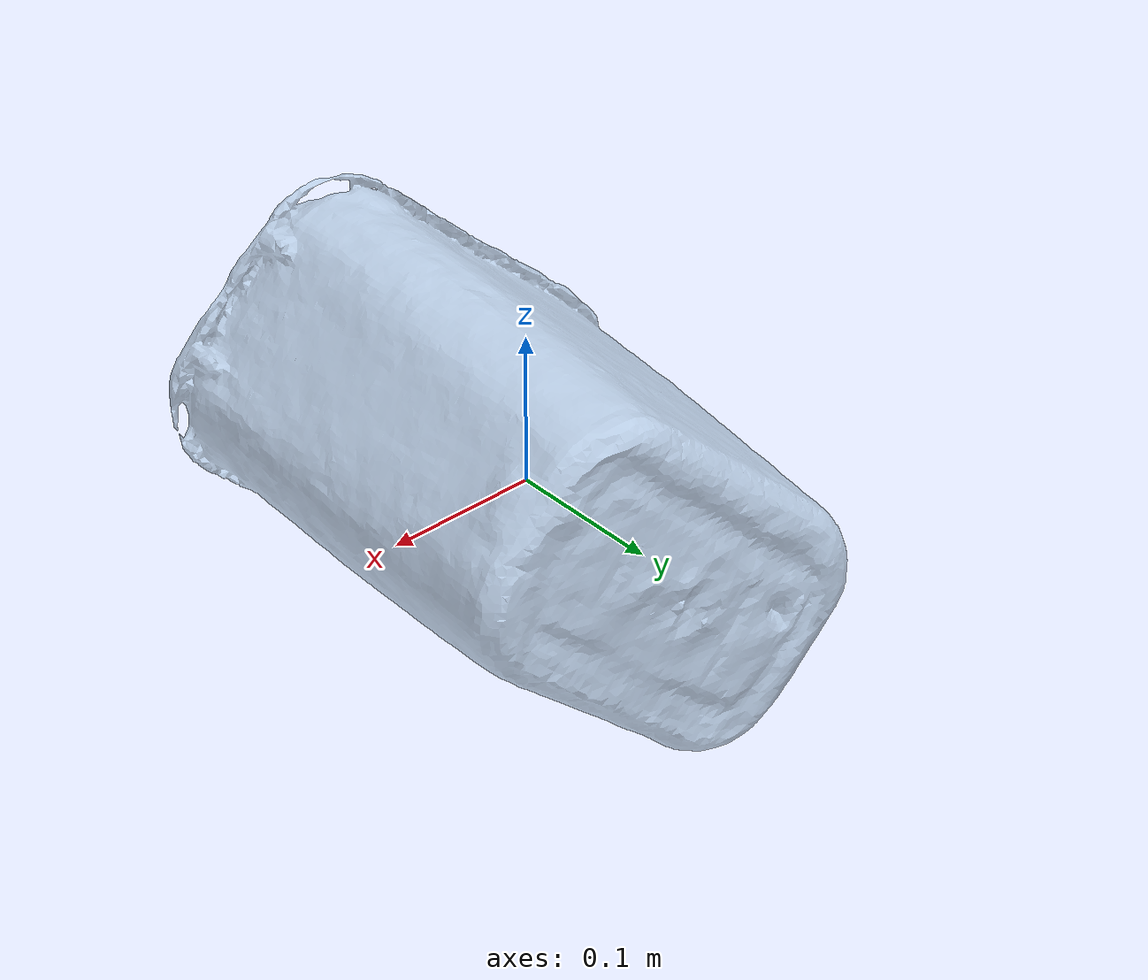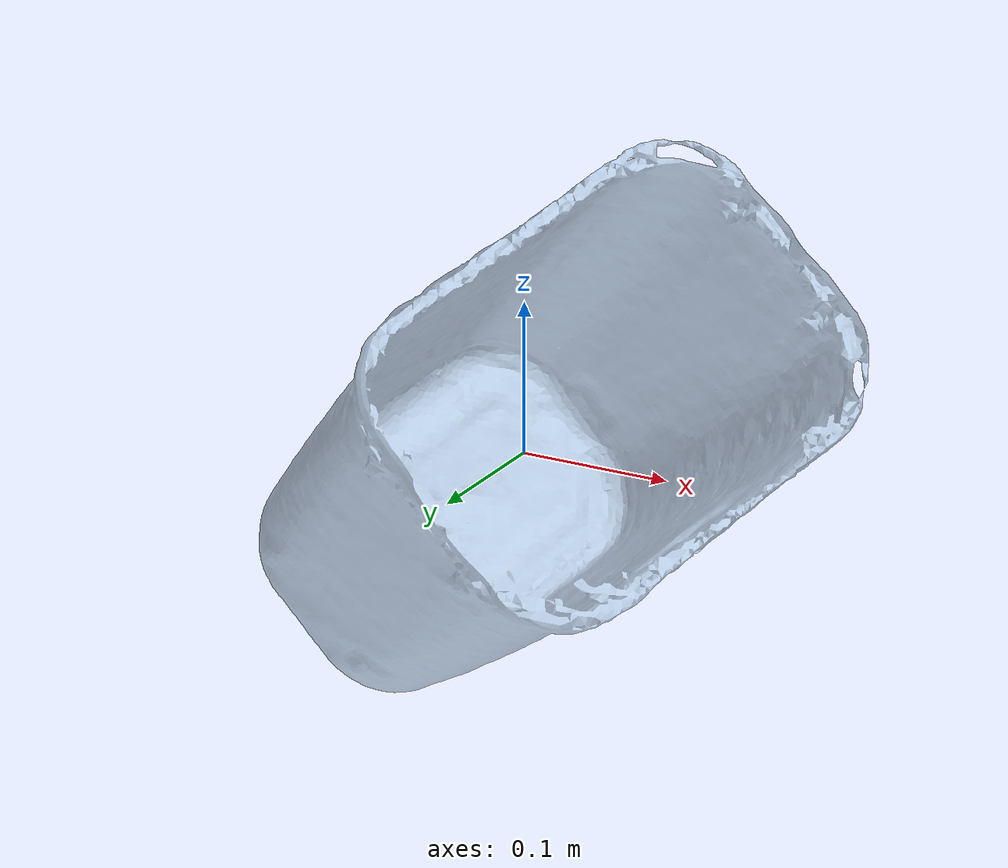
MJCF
<mujoco model="trashcan">
    <compiler meshdir="./"/>

    <default>
        <geom friction="0.9 0.5 0.5" rgba="0.7 0.8 0.9 0.7"/>
        <joint damping="0.5"/>
    </default>

    <asset>
        <mesh name="trashcan_mesh" file="trashcan.obj" scale="1 1 1"/>
    </asset>

    <worldbody>
        <body name="trashcan_link">
            <inertial pos="0 0 0" mass="0.1" diaginertia="0.002 0.002 0.002"/>
            <geom name="trashcan" type="mesh" mesh="trashcan_mesh"
                  pos="0 0 0" quat="1 0 0 0"
                  rgba="0.7 0.8 0.9 0.7"
                  friction="0.9 0.5 0.5"
                  solref="0.02 1"
                  solimp="0.9 0.95 0.001"/>
        </body>
    </worldbody>
</mujoco>
